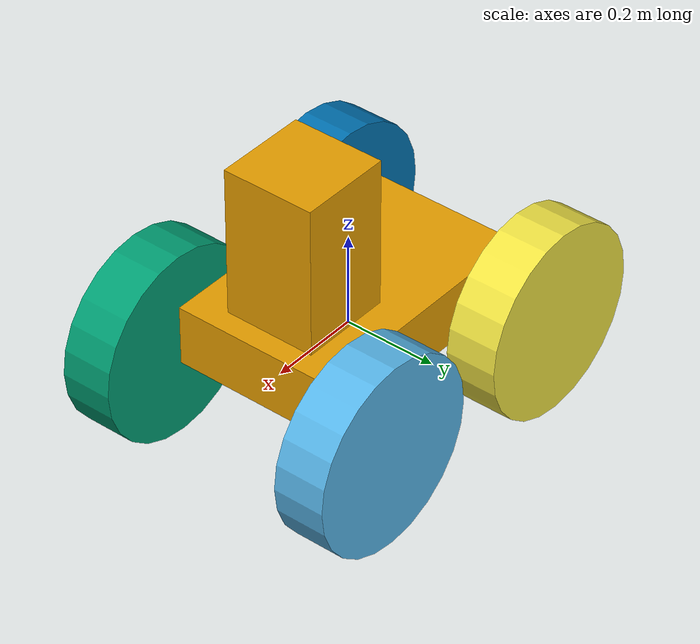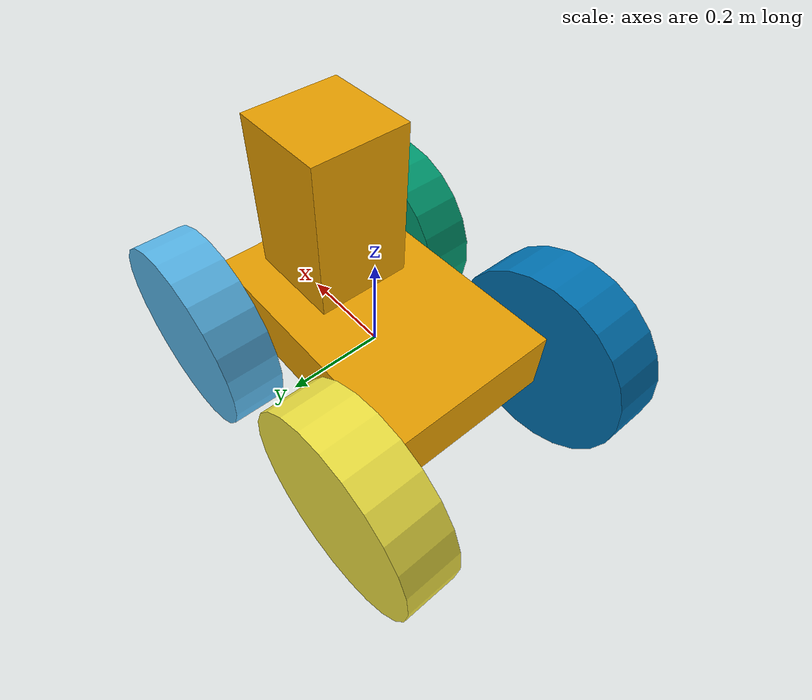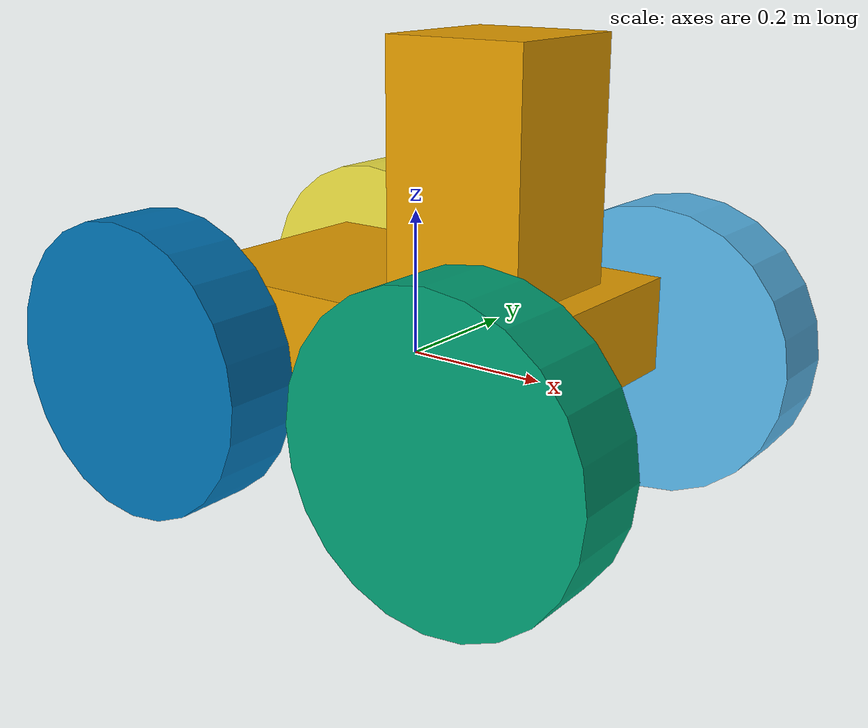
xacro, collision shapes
<?xml version='1.0' encoding='utf-8'?>
<robot name='coro_allie_sensor_config_1' xmlns:xacro="http://ros.org/wiki/xacro">
  <xacro:arg name="name" default="coro_allie_sensor_config_1"/>
  <xacro:property name="robot_namespace" value="$(arg name)"/>
  <link name='${robot_namespace}/base_link'>
    <inertial>
      <origin xyz='0 0 0.09' rpy='0 -0 0'/>
      <mass value='26.6'/>
      <inertia ixx='0.387' ixy='0' ixz='0' iyy='0.79' iyz='0' izz='0.962'/>
    </inertial>
    <collision name='chassis_collision'>
      <origin xyz='0 0 0.05' rpy='0 -0 0'/>
      <geometry>
        <box size='0.555 0.355 0.13'/>
      </geometry>
    </collision>
    <collision name='tower_collision'>
      <origin xyz='0.13 0 0.27' rpy='0 -0 0'/>
      <geometry>
        <box size='0.2 0.2 0.34'/>
      </geometry>
    </collision>
    <visual name='chassis_main_visual'>
      <origin xyz='0 0 0.05' rpy='0 -0 0'/>
      <geometry>
        <box size='0.555 0.355 0.13'/>
      </geometry>
    </visual>
    <visual name='emergency_stop_bottom_visual'>
      <origin xyz='0.2 0.15 0.125' rpy='0 -0 0'/>
      <geometry>
        <cylinder radius='0.015' length='0.015'/>
      </geometry>
    </visual>
    <visual name='emergency_stop_top_visual'>
      <origin xyz='0.2 0.15 0.135' rpy='0 -0 0'/>
      <geometry>
        <cylinder radius='0.02' length='0.005'/>
      </geometry>
    </visual>
    <visual name='wheel_mount_front_visual'>
      <origin xyz='0.249 0 0.011' rpy='0 -0 0'/>
      <geometry>
        <box size='0.05 0.5 0.05'/>
      </geometry>
    </visual>
    <visual name='wheel_mount_rear_visual'>
      <origin xyz='-0.249 0 0.011' rpy='0 -0 0'/>
      <geometry>
        <box size='0.05 0.5 0.05'/>
      </geometry>
    </visual>
    <visual name='plate1_visual'>
      <origin xyz='0.13 0 0.42' rpy='0 -0 0'/>
      <geometry>
        <box size='0.2 0.2 0.005'/>
      </geometry>
    </visual>
    <visual name='plate2_visual'>
      <origin xyz='0.13 0 0.31' rpy='0 -0 0'/>
      <geometry>
        <box size='0.2 0.2 0.005'/>
      </geometry>
    </visual>
    <visual name='plate3_visual'>
      <origin xyz='0.13 0 0.12' rpy='0 -0 0'/>
      <geometry>
        <box size='0.2 0.2 0.005'/>
      </geometry>
    </visual>
    <visual name='beam1_visual'>
      <origin xyz='0.221 0.091 0.27' rpy='0 -0 0'/>
      <geometry>
        <box size='0.02 0.02 0.3'/>
      </geometry>
    </visual>
    <visual name='beam2_visual'>
      <origin xyz='0.221 -0.091 0.27' rpy='0 -0 0'/>
      <geometry>
        <box size='0.02 0.02 0.3'/>
      </geometry>
    </visual>
    <visual name='beam3_visual'>
      <origin xyz='0.039 0.091 0.27' rpy='0 -0 0'/>
      <geometry>
        <box size='0.02 0.02 0.3'/>
      </geometry>
    </visual>
    <visual name='beam4_visual'>
      <origin xyz='0.039 -0.091 0.27' rpy='0 -0 0'/>
      <geometry>
        <box size='0.02 0.02 0.3'/>
      </geometry>
    </visual>
    <visual name='d435i_realsense_camera_visual'>
      <origin xyz='0.19 0 0.393' rpy='0 0.52 0'/>
      <geometry>
        <mesh filename='meshes/realsense_d435.dae' scale='0.001 0.001 0.001'/>
      </geometry>
    </visual>
    <visual name='vlp16_visual1'>
      <origin xyz='0.13 0 0.312' rpy='0 -0 0'/>
      <geometry>
        <mesh filename='meshes/VLP16_base_1.dae' scale='1 1 1'/>
      </geometry>
    </visual>
    <visual name='vlp_visual2'>
      <origin xyz='0.13 0 0.312' rpy='0 -0 0'/>
      <geometry>
        <mesh filename='meshes/VLP16_base_2.dae' scale='1 1 1'/>
      </geometry>
    </visual>
    <visual name='vlp_visual3'>
      <origin xyz='0.13 0 0.312' rpy='0 -0 0'/>
      <geometry>
        <mesh filename='meshes/VLP16_scan.dae' scale='1 1 1'/>
      </geometry>
    </visual>
    <visual name='camera_front_visual'>
      <origin xyz='0.22 0.06 0.405' rpy='0 -0 0'/>
      <geometry>
        <box size='0.01 0.03 0.03'/>
      </geometry>
    </visual>
    <visual name='camera_lens_front_visual'>
      <origin xyz='0.23 0.06 0.405' rpy='0 1.5708 0'/>
      <geometry>
        <cylinder radius='0.005' length='0.011'/>
      </geometry>
    </visual>
    <visual name='camera_rear_visual'>
      <origin xyz='0.04 0 0.405' rpy='0 -0 0'/>
      <geometry>
        <box size='0.01 0.03 0.03'/>
      </geometry>
    </visual>
    <visual name='camera_lens_rear_visual'>
      <origin xyz='0.03 0 0.405' rpy='0 1.5708 0'/>
      <geometry>
        <cylinder radius='0.005' length='0.011'/>
      </geometry>
    </visual>
    <visual name='camera_left_visual'>
      <origin xyz='0.13 0.09 0.405' rpy='0 -0 0'/>
      <geometry>
        <box size='0.03 0.01 0.03'/>
      </geometry>
    </visual>
    <visual name='camera_lens_left_visual'>
      <origin xyz='0.13 0.1 0.405' rpy='1.5708 -0 0'/>
      <geometry>
        <cylinder radius='0.005' length='0.011'/>
      </geometry>
    </visual>
    <visual name='camera_right_visual'>
      <origin xyz='0.13 -0.09 0.405' rpy='0 -0 0'/>
      <geometry>
        <box size='0.03 0.01 0.03'/>
      </geometry>
    </visual>
    <visual name='camera_lens_right_visual'>
      <origin xyz='0.13 -0.1 0.405' rpy='1.5708 -0 0'/>
      <geometry>
        <cylinder radius='0.005' length='0.011'/>
      </geometry>
    </visual>
    <visual name='light_front_visual'>
      <origin xyz='0.22 0 0.442' rpy='0 -0 0'/>
      <geometry>
        <box size='0.04 0.13 0.04'/>
      </geometry>
    </visual>
    <visual name='light_rear_visual'>
      <origin xyz='0.04 0 0.44' rpy='0 -0 0'/>
      <geometry>
        <box size='0.04 0.12 0.04'/>
      </geometry>
    </visual>
    <visual name='light_left_visual'>
      <origin xyz='0.13 0.09 0.442' rpy='0 -0 0'/>
      <geometry>
        <box size='0.12 0.04 0.04'/>
      </geometry>
    </visual>
    <visual name='light_right_visual'>
      <origin xyz='0.13 -0.09 0.442' rpy='0 -0 0'/>
      <geometry>
        <box size='0.12 0.04 0.04'/>
      </geometry>
    </visual>
  </link>
  <sensor name='imu_sensor' update_rate='50'>
    <parent link='${robot_namespace}/base_link'/>
    <origin xyz='0 0 0' rpy='0 -0 0'/>
  </sensor>
  <sensor name='air_pressure' update_rate='20'>
    <parent link='${robot_namespace}/base_link'/>
    <origin xyz='0 0 0' rpy='0 -0 0'/>
  </sensor>
  <sensor name='magnetometer' update_rate='50'>
    <parent link='${robot_namespace}/base_link'/>
    <origin xyz='0 0 0' rpy='0 -0 0'/>
  </sensor>
  <sensor name='rgbd_front' update_rate='30'>
    <parent link='${robot_namespace}/base_link'/>
    <origin xyz='0.21 0 0.393' rpy='0 0.52 0'/>
    <camera>
      <image width='640' height='360' format='R8G8B8' hfov='1.50098' near='0.01' far='300' />
    </camera>
  </sensor>
  <sensor name='camera_front' update_rate='25'>
    <parent link='${robot_namespace}/base_link'/>
    <origin xyz='0.24 0.06 0.405' rpy='0 -0 0'/>
    <camera>
      <image width='720' height='1080' format='R8G8B8' hfov='1.658' near='0.01' far='300' />
    </camera>
  </sensor>
  <sensor name='camera_rear' update_rate='25'>
    <parent link='${robot_namespace}/base_link'/>
    <origin xyz='0.02 0 0.405' rpy='0 -0 3.14159'/>
    <camera>
      <image width='720' height='1080' format='R8G8B8' hfov='1.658' near='0.01' far='300' />
    </camera>
  </sensor>
  <sensor name='camera_left' update_rate='25'>
    <parent link='${robot_namespace}/base_link'/>
    <origin xyz='0.13 0.11 0.405' rpy='0 -0 1.5708'/>
    <camera>
      <image width='720' height='1080' format='R8G8B8' hfov='1.658' near='0.01' far='300' />
    </camera>
  </sensor>
  <sensor name='camera_right' update_rate='25'>
    <parent link='${robot_namespace}/base_link'/>
    <origin xyz='0.13 -0.11 0.405' rpy='0 0 -1.5708'/>
    <camera>
      <image width='720' height='1080' format='R8G8B8' hfov='1.658' near='0.01' far='300' />
    </camera>
  </sensor>
  <sensor name='front_laser' update_rate='10'>
    <parent link='${robot_namespace}/base_link'/>
    <origin xyz='0.13 0 0.35' rpy='0 -0 0'/>
  </sensor>
  <link name='${robot_namespace}/front_left_wheel'>
    <inertial>
      <origin xyz='0 0 0' rpy='0 -0 0'/>
      <mass value='5.124'/>
      <inertia ixx='0.0576' ixy='0' ixz='0' iyy='0.105' iyz='0' izz='0.0576'/>
    </inertial>
    <collision name='front_left_wheel_collision'>
      <origin xyz='0 0 0' rpy='-1.5708 0 0'/>
      <geometry>
        <cylinder radius='0.205' length='0.11'/>
      </geometry>
    </collision>
    <visual name='front_left_wheel_tire_visual'>
      <origin xyz='0 0 0' rpy='0 -0 0'/>
      <geometry>
        <mesh filename='meshes/wheel.dae' scale='1.18 1 1.18'/>
      </geometry>
    </visual>
  </link>
  <link name='${robot_namespace}/front_right_wheel'>
    <inertial>
      <origin xyz='0 0 0' rpy='0 -0 0'/>
      <mass value='5.124'/>
      <inertia ixx='0.0576' ixy='0' ixz='0' iyy='0.105' iyz='0' izz='0.0576'/>
    </inertial>
    <collision name='front_right_wheel_collision'>
      <origin xyz='0 0 0' rpy='1.5708 -0 0'/>
      <geometry>
        <cylinder radius='0.205' length='0.11'/>
      </geometry>
    </collision>
    <visual name='front_right_wheel_tire_visual'>
      <origin xyz='0 0 0' rpy='0 -0 0'/>
      <geometry>
        <mesh filename='meshes/wheel.dae' scale='1.18 1 1.18'/>
      </geometry>
    </visual>
  </link>
  <link name='${robot_namespace}/rear_left_wheel'>
    <inertial>
      <origin xyz='0 0 0' rpy='0 -0 0'/>
      <mass value='5.124'/>
      <inertia ixx='0.0576' ixy='0' ixz='0' iyy='0.105' iyz='0' izz='0.0576'/>
    </inertial>
    <collision name='rear_left_wheel_collision'>
      <origin xyz='0 0 0' rpy='-1.5708 0 0'/>
      <geometry>
        <cylinder radius='0.205' length='0.11'/>
      </geometry>
    </collision>
    <visual name='rear_left_wheel_tire_visual'>
      <origin xyz='0 0 0' rpy='0 -0 0'/>
      <geometry>
        <mesh filename='meshes/wheel.dae' scale='1.18 1 1.18'/>
      </geometry>
    </visual>
  </link>
  <link name='${robot_namespace}/rear_right_wheel'>
    <inertial>
      <origin xyz='0 0 0' rpy='0 -0 0'/>
      <mass value='5.124'/>
      <inertia ixx='0.0576' ixy='0' ixz='0' iyy='0.105' iyz='0' izz='0.0576'/>
    </inertial>
    <collision name='rear_right_wheel_collision'>
      <origin xyz='0 0 0' rpy='1.5708 -0 0'/>
      <geometry>
        <cylinder radius='0.205' length='0.11'/>
      </geometry>
    </collision>
    <visual name='rear_right_wheel_tire_visual'>
      <origin xyz='0 0 0' rpy='0 -0 0'/>
      <geometry>
        <mesh filename='meshes/wheel.dae' scale='1.18 1 1.18'/>
      </geometry>
    </visual>
  </link>
  <joint name='front_left_wheel_joint' type='revolute'>
    <origin xyz='0.25 0.255 0' rpy='0 -0 0'/>
    <parent link='${robot_namespace}/base_link'/>
    <child link='${robot_namespace}/front_left_wheel'/>
    <axis xyz='0 1 0'/>
    <limit lower='-1.79769e+308' upper='1.79769e+308' effort='53.5' velocity='13.65'/>
  </joint>
  <joint name='rear_left_wheel_joint' type='revolute'>
    <origin xyz='-0.25 0.255 0' rpy='0 -0 0'/>
    <parent link='${robot_namespace}/base_link'/>
    <child link='${robot_namespace}/rear_left_wheel'/>
    <axis xyz='0 1 0'/>
    <limit lower='-1.79769e+308' upper='1.79769e+308' effort='53.5' velocity='13.65'/>
  </joint>
  <joint name='rear_right_wheel_joint' type='revolute'>
    <origin xyz='-0.25 -0.255 0' rpy='0 -0 0'/>
    <parent link='${robot_namespace}/base_link'/>
    <child link='${robot_namespace}/rear_right_wheel'/>
    <axis xyz='0 1 0'/>
    <limit lower='-1.79769e+308' upper='1.79769e+308' effort='53.5' velocity='13.65'/>
  </joint>
  <joint name='front_right_wheel_joint' type='revolute'>
    <origin xyz='0.25 -0.255 0' rpy='0 -0 0'/>
    <parent link='${robot_namespace}/base_link'/>
    <child link='${robot_namespace}/front_right_wheel'/>
    <axis xyz='0 1 0'/>
    <limit lower='-1.79769e+308' upper='1.79769e+308' effort='53.5' velocity='13.65'/>
  </joint>
</robot>
